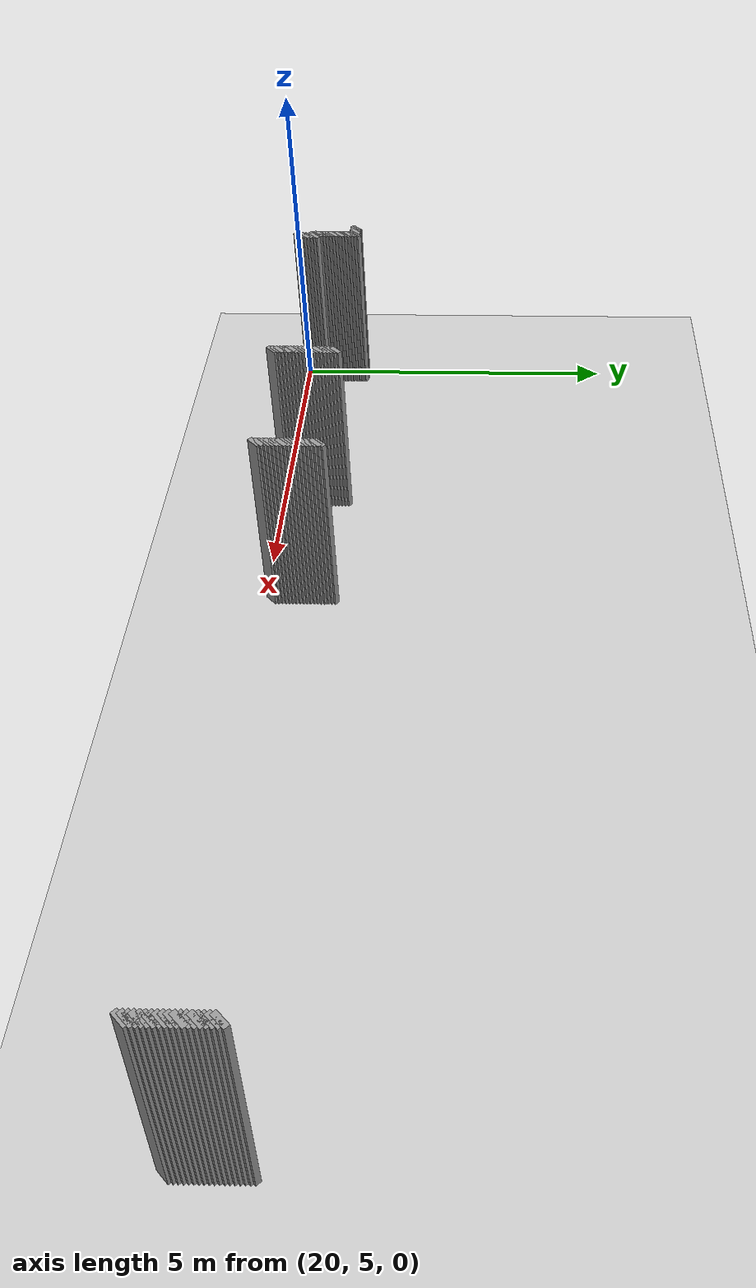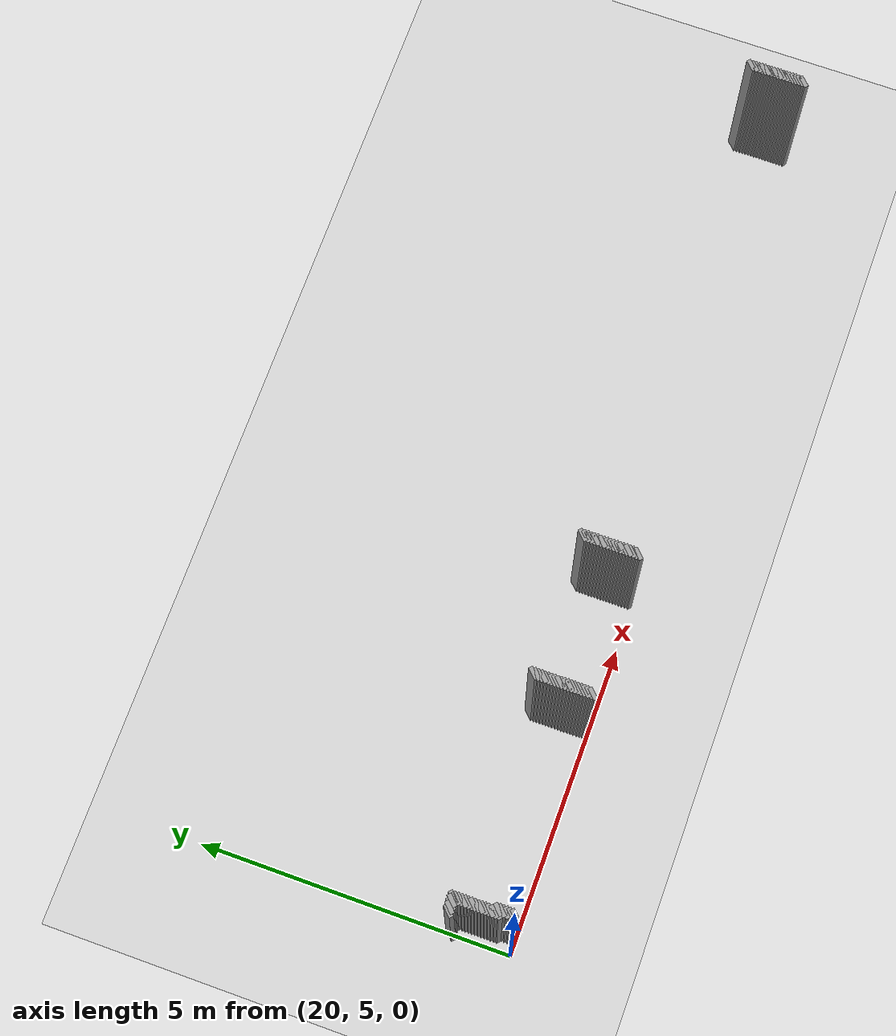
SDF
<sdf version="1.5">
 <world name="default">
  <include><uri>model://ground_plane</uri></include>
  <include><uri>model://sun</uri></include>
  <model name="grey_wall_4727">
   <static>1</static>
   <link name="link">
    <pose>20.0 5.95  1.4 0 0 -0.785398163397</pose>
    <collision name="collision"><geometry><box><size>0.0707106781187 .2  2.8</size></box></geometry></collision>
    <visual name="visual">
     <cast_shadows>0</cast_shadows>
     <geometry><box><size>0.0707106781187 .2  2.8</size></box></geometry>
     <material>
      <script>
       <uri>model://grey_wall/materials/scripts</uri>
       <uri>model://grey_wall/materials/textures</uri>
       <name>vrc/grey_wall</name>
      </script>
     </material>
    </visual>
   </link>
  </model>
  <model name="grey_wall_4728">
   <static>1</static>
   <link name="link">
    <pose>20.05 5.95  1.4 0 0 -0.785398163397</pose>
    <collision name="collision"><geometry><box><size>0.0707106781187 .2  2.8</size></box></geometry></collision>
    <visual name="visual">
     <cast_shadows>0</cast_shadows>
     <geometry><box><size>0.0707106781187 .2  2.8</size></box></geometry>
     <material>
      <script>
       <uri>model://grey_wall/materials/scripts</uri>
       <uri>model://grey_wall/materials/textures</uri>
       <name>vrc/grey_wall</name>
      </script>
     </material>
    </visual>
   </link>
  </model>
  <model name="grey_wall_4729">
   <static>1</static>
   <link name="link">
    <pose>20.1 5.95  1.4 0 0 -0.785398163397</pose>
    <collision name="collision"><geometry><box><size>0.0707106781187 .2  2.8</size></box></geometry></collision>
    <visual name="visual">
     <cast_shadows>0</cast_shadows>
     <geometry><box><size>0.0707106781187 .2  2.8</size></box></geometry>
     <material>
      <script>
       <uri>model://grey_wall/materials/scripts</uri>
       <uri>model://grey_wall/materials/textures</uri>
       <name>vrc/grey_wall</name>
      </script>
     </material>
    </visual>
   </link>
  </model>
  <model name="grey_wall_4730">
   <static>1</static>
   <link name="link">
    <pose>20.15 5.95  1.4 0 0 -0.785398163397</pose>
    <collision name="collision"><geometry><box><size>0.0707106781187 .2  2.8</size></box></geometry></collision>
    <visual name="visual">
     <cast_shadows>0</cast_shadows>
     <geometry><box><size>0.0707106781187 .2  2.8</size></box></geometry>
     <material>
      <script>
       <uri>model://grey_wall/materials/scripts</uri>
       <uri>model://grey_wall/materials/textures</uri>
       <name>vrc/grey_wall</name>
      </script>
     </material>
    </visual>
   </link>
  </model>
  <model name="grey_wall_4731">
   <static>1</static>
   <link name="link">
    <pose>20.2 5.95  1.4 0 0 -0.785398163397</pose>
    <collision name="collision"><geometry><box><size>0.0707106781187 .2  2.8</size></box></geometry></collision>
    <visual name="visual">
     <cast_shadows>0</cast_shadows>
     <geometry><box><size>0.0707106781187 .2  2.8</size></box></geometry>
     <material>
      <script>
       <uri>model://grey_wall/materials/scripts</uri>
       <uri>model://grey_wall/materials/textures</uri>
       <name>vrc/grey_wall</name>
      </script>
     </material>
    </visual>
   </link>
  </model>
  <model name="grey_wall_4732">
   <static>1</static>
   <link name="link">
    <pose>23.6 5.95  1.4 0 0 -0.785398163397</pose>
    <collision name="collision"><geometry><box><size>0.0707106781187 .2  2.8</size></box></geometry></collision>
    <visual name="visual">
     <cast_shadows>0</cast_shadows>
     <geometry><box><size>0.0707106781187 .2  2.8</size></box></geometry>
     <material>
      <script>
       <uri>model://grey_wall/materials/scripts</uri>
       <uri>model://grey_wall/materials/textures</uri>
       <name>vrc/grey_wall</name>
      </script>
     </material>
    </visual>
   </link>
  </model>
  <model name="grey_wall_4733">
   <static>1</static>
   <link name="link">
    <pose>25.8 5.95  1.4 0 0 -0.785398163397</pose>
    <collision name="collision"><geometry><box><size>0.0707106781187 .2  2.8</size></box></geometry></collision>
    <visual name="visual">
     <cast_shadows>0</cast_shadows>
     <geometry><box><size>0.0707106781187 .2  2.8</size></box></geometry>
     <material>
      <script>
       <uri>model://grey_wall/materials/scripts</uri>
       <uri>model://grey_wall/materials/textures</uri>
       <name>vrc/grey_wall</name>
      </script>
     </material>
    </visual>
   </link>
  </model>
  <model name="grey_wall_4734">
   <static>1</static>
   <link name="link">
    <pose>33.95 5.95  1.4 0 0 -0.785398163397</pose>
    <collision name="collision"><geometry><box><size>0.0707106781187 .2  2.8</size></box></geometry></collision>
    <visual name="visual">
     <cast_shadows>0</cast_shadows>
     <geometry><box><size>0.0707106781187 .2  2.8</size></box></geometry>
     <material>
      <script>
       <uri>model://grey_wall/materials/scripts</uri>
       <uri>model://grey_wall/materials/textures</uri>
       <name>vrc/grey_wall</name>
      </script>
     </material>
    </visual>
   </link>
  </model>
  <model name="grey_wall_4735">
   <static>1</static>
   <link name="link">
    <pose>20.2 5.9  1.4 0 0 -0.785398163397</pose>
    <collision name="collision"><geometry><box><size>0.0707106781187 .2  2.8</size></box></geometry></collision>
    <visual name="visual">
     <cast_shadows>0</cast_shadows>
     <geometry><box><size>0.0707106781187 .2  2.8</size></box></geometry>
     <material>
      <script>
       <uri>model://grey_wall/materials/scripts</uri>
       <uri>model://grey_wall/materials/textures</uri>
       <name>vrc/grey_wall</name>
      </script>
     </material>
    </visual>
   </link>
  </model>
  <model name="grey_wall_4736">
   <static>1</static>
   <link name="link">
    <pose>23.6 5.9  1.4 0 0 -0.785398163397</pose>
    <collision name="collision"><geometry><box><size>0.0707106781187 .2  2.8</size></box></geometry></collision>
    <visual name="visual">
     <cast_shadows>0</cast_shadows>
     <geometry><box><size>0.0707106781187 .2  2.8</size></box></geometry>
     <material>
      <script>
       <uri>model://grey_wall/materials/scripts</uri>
       <uri>model://grey_wall/materials/textures</uri>
       <name>vrc/grey_wall</name>
      </script>
     </material>
    </visual>
   </link>
  </model>
  <model name="grey_wall_4737">
   <static>1</static>
   <link name="link">
    <pose>25.8 5.9  1.4 0 0 -0.785398163397</pose>
    <collision name="collision"><geometry><box><size>0.0707106781187 .2  2.8</size></box></geometry></collision>
    <visual name="visual">
     <cast_shadows>0</cast_shadows>
     <geometry><box><size>0.0707106781187 .2  2.8</size></box></geometry>
     <material>
      <script>
       <uri>model://grey_wall/materials/scripts</uri>
       <uri>model://grey_wall/materials/textures</uri>
       <name>vrc/grey_wall</name>
      </script>
     </material>
    </visual>
   </link>
  </model>
  <model name="grey_wall_4738">
   <static>1</static>
   <link name="link">
    <pose>33.95 5.9  1.4 0 0 -0.785398163397</pose>
    <collision name="collision"><geometry><box><size>0.0707106781187 .2  2.8</size></box></geometry></collision>
    <visual name="visual">
     <cast_shadows>0</cast_shadows>
     <geometry><box><size>0.0707106781187 .2  2.8</size></box></geometry>
     <material>
      <script>
       <uri>model://grey_wall/materials/scripts</uri>
       <uri>model://grey_wall/materials/textures</uri>
       <name>vrc/grey_wall</name>
      </script>
     </material>
    </visual>
   </link>
  </model>
  <model name="grey_wall_4739">
   <static>1</static>
   <link name="link">
    <pose>20.2 5.85  1.4 0 0 -0.785398163397</pose>
    <collision name="collision"><geometry><box><size>0.0707106781187 .2  2.8</size></box></geometry></collision>
    <visual name="visual">
     <cast_shadows>0</cast_shadows>
     <geometry><box><size>0.0707106781187 .2  2.8</size></box></geometry>
     <material>
      <script>
       <uri>model://grey_wall/materials/scripts</uri>
       <uri>model://grey_wall/materials/textures</uri>
       <name>vrc/grey_wall</name>
      </script>
     </material>
    </visual>
   </link>
  </model>
  <model name="grey_wall_4740">
   <static>1</static>
   <link name="link">
    <pose>23.6 5.85  1.4 0 0 -0.785398163397</pose>
    <collision name="collision"><geometry><box><size>0.0707106781187 .2  2.8</size></box></geometry></collision>
    <visual name="visual">
     <cast_shadows>0</cast_shadows>
     <geometry><box><size>0.0707106781187 .2  2.8</size></box></geometry>
     <material>
      <script>
       <uri>model://grey_wall/materials/scripts</uri>
       <uri>model://grey_wall/materials/textures</uri>
       <name>vrc/grey_wall</name>
      </script>
     </material>
    </visual>
   </link>
  </model>
  <model name="grey_wall_4741">
   <static>1</static>
   <link name="link">
    <pose>25.8 5.85  1.4 0 0 -0.785398163397</pose>
    <collision name="collision"><geometry><box><size>0.0707106781187 .2  2.8</size></box></geometry></collision>
    <visual name="visual">
     <cast_shadows>0</cast_shadows>
     <geometry><box><size>0.0707106781187 .2  2.8</size></box></geometry>
     <material>
      <script>
       <uri>model://grey_wall/materials/scripts</uri>
       <uri>model://grey_wall/materials/textures</uri>
       <name>vrc/grey_wall</name>
      </script>
     </material>
    </visual>
   </link>
  </model>
  <model name="grey_wall_4742">
   <static>1</static>
   <link name="link">
    <pose>33.95 5.85  1.4 0 0 -0.785398163397</pose>
    <collision name="collision"><geometry><box><size>0.0707106781187 .2  2.8</size></box></geometry></collision>
    <visual name="visual">
     <cast_shadows>0</cast_shadows>
     <geometry><box><size>0.0707106781187 .2  2.8</size></box></geometry>
     <material>
      <script>
       <uri>model://grey_wall/materials/scripts</uri>
       <uri>model://grey_wall/materials/textures</uri>
       <name>vrc/grey_wall</name>
      </script>
     </material>
    </visual>
   </link>
  </model>
  <model name="grey_wall_4743">
   <static>1</static>
   <link name="link">
    <pose>20.2 5.8  1.4 0 0 -0.785398163397</pose>
    <collision name="collision"><geometry><box><size>0.0707106781187 .2  2.8</size></box></geometry></collision>
    <visual name="visual">
     <cast_shadows>0</cast_shadows>
     <geometry><box><size>0.0707106781187 .2  2.8</size></box></geometry>
     <material>
      <script>
       <uri>model://grey_wall/materials/scripts</uri>
       <uri>model://grey_wall/materials/textures</uri>
       <name>vrc/grey_wall</name>
      </script>
     </material>
    </visual>
   </link>
  </model>
  <model name="grey_wall_4744">
   <static>1</static>
   <link name="link">
    <pose>23.6 5.8  1.4 0 0 -0.785398163397</pose>
    <collision name="collision"><geometry><box><size>0.0707106781187 .2  2.8</size></box></geometry></collision>
    <visual name="visual">
     <cast_shadows>0</cast_shadows>
     <geometry><box><size>0.0707106781187 .2  2.8</size></box></geometry>
     <material>
      <script>
       <uri>model://grey_wall/materials/scripts</uri>
       <uri>model://grey_wall/materials/textures</uri>
       <name>vrc/grey_wall</name>
      </script>
     </material>
    </visual>
   </link>
  </model>
  <model name="grey_wall_4745">
   <static>1</static>
   <link name="link">
    <pose>25.8 5.8  1.4 0 0 -0.785398163397</pose>
    <collision name="collision"><geometry><box><size>0.0707106781187 .2  2.8</size></box></geometry></collision>
    <visual name="visual">
     <cast_shadows>0</cast_shadows>
     <geometry><box><size>0.0707106781187 .2  2.8</size></box></geometry>
     <material>
      <script>
       <uri>model://grey_wall/materials/scripts</uri>
       <uri>model://grey_wall/materials/textures</uri>
       <name>vrc/grey_wall</name>
      </script>
     </material>
    </visual>
   </link>
  </model>
  <model name="grey_wall_4746">
   <static>1</static>
   <link name="link">
    <pose>33.95 5.8  1.4 0 0 -0.785398163397</pose>
    <collision name="collision"><geometry><box><size>0.0707106781187 .2  2.8</size></box></geometry></collision>
    <visual name="visual">
     <cast_shadows>0</cast_shadows>
     <geometry><box><size>0.0707106781187 .2  2.8</size></box></geometry>
     <material>
      <script>
       <uri>model://grey_wall/materials/scripts</uri>
       <uri>model://grey_wall/materials/textures</uri>
       <name>vrc/grey_wall</name>
      </script>
     </material>
    </visual>
   </link>
  </model>
  <model name="grey_wall_4747">
   <static>1</static>
   <link name="link">
    <pose>20.2 5.75  1.4 0 0 -0.785398163397</pose>
    <collision name="collision"><geometry><box><size>0.0707106781187 .2  2.8</size></box></geometry></collision>
    <visual name="visual">
     <cast_shadows>0</cast_shadows>
     <geometry><box><size>0.0707106781187 .2  2.8</size></box></geometry>
     <material>
      <script>
       <uri>model://grey_wall/materials/scripts</uri>
       <uri>model://grey_wall/materials/textures</uri>
       <name>vrc/grey_wall</name>
      </script>
     </material>
    </visual>
   </link>
  </model>
  <model name="grey_wall_4748">
   <static>1</static>
   <link name="link">
    <pose>23.6 5.75  1.4 0 0 -0.785398163397</pose>
    <collision name="collision"><geometry><box><size>0.0707106781187 .2  2.8</size></box></geometry></collision>
    <visual name="visual">
     <cast_shadows>0</cast_shadows>
     <geometry><box><size>0.0707106781187 .2  2.8</size></box></geometry>
     <material>
      <script>
       <uri>model://grey_wall/materials/scripts</uri>
       <uri>model://grey_wall/materials/textures</uri>
       <name>vrc/grey_wall</name>
      </script>
     </material>
    </visual>
   </link>
  </model>
  <model name="grey_wall_4749">
   <static>1</static>
   <link name="link">
    <pose>25.8 5.75  1.4 0 0 -0.785398163397</pose>
    <collision name="collision"><geometry><box><size>0.0707106781187 .2  2.8</size></box></geometry></collision>
    <visual name="visual">
     <cast_shadows>0</cast_shadows>
     <geometry><box><size>0.0707106781187 .2  2.8</size></box></geometry>
     <material>
      <script>
       <uri>model://grey_wall/materials/scripts</uri>
       <uri>model://grey_wall/materials/textures</uri>
       <name>vrc/grey_wall</name>
      </script>
     </material>
    </visual>
   </link>
  </model>
  <model name="grey_wall_4750">
   <static>1</static>
   <link name="link">
    <pose>33.95 5.75  1.4 0 0 -0.785398163397</pose>
    <collision name="collision"><geometry><box><size>0.0707106781187 .2  2.8</size></box></geometry></collision>
    <visual name="visual">
     <cast_shadows>0</cast_shadows>
     <geometry><box><size>0.0707106781187 .2  2.8</size></box></geometry>
     <material>
      <script>
       <uri>model://grey_wall/materials/scripts</uri>
       <uri>model://grey_wall/materials/textures</uri>
       <name>vrc/grey_wall</name>
      </script>
     </material>
    </visual>
   </link>
  </model>
  <model name="grey_wall_4751">
   <static>1</static>
   <link name="link">
    <pose>20.2 5.7  1.4 0 0 -0.785398163397</pose>
    <collision name="collision"><geometry><box><size>0.0707106781187 .2  2.8</size></box></geometry></collision>
    <visual name="visual">
     <cast_shadows>0</cast_shadows>
     <geometry><box><size>0.0707106781187 .2  2.8</size></box></geometry>
     <material>
      <script>
       <uri>model://grey_wall/materials/scripts</uri>
       <uri>model://grey_wall/materials/textures</uri>
       <name>vrc/grey_wall</name>
      </script>
     </material>
    </visual>
   </link>
  </model>
  <model name="grey_wall_4752">
   <static>1</static>
   <link name="link">
    <pose>23.6 5.7  1.4 0 0 -0.785398163397</pose>
    <collision name="collision"><geometry><box><size>0.0707106781187 .2  2.8</size></box></geometry></collision>
    <visual name="visual">
     <cast_shadows>0</cast_shadows>
     <geometry><box><size>0.0707106781187 .2  2.8</size></box></geometry>
     <material>
      <script>
       <uri>model://grey_wall/materials/scripts</uri>
       <uri>model://grey_wall/materials/textures</uri>
       <name>vrc/grey_wall</name>
      </script>
     </material>
    </visual>
   </link>
  </model>
  <model name="grey_wall_4753">
   <static>1</static>
   <link name="link">
    <pose>25.8 5.7  1.4 0 0 -0.785398163397</pose>
    <collision name="collision"><geometry><box><size>0.0707106781187 .2  2.8</size></box></geometry></collision>
    <visual name="visual">
     <cast_shadows>0</cast_shadows>
     <geometry><box><size>0.0707106781187 .2  2.8</size></box></geometry>
     <material>
      <script>
       <uri>model://grey_wall/materials/scripts</uri>
       <uri>model://grey_wall/materials/textures</uri>
       <name>vrc/grey_wall</name>
      </script>
     </material>
    </visual>
   </link>
  </model>
  <model name="grey_wall_4754">
   <static>1</static>
   <link name="link">
    <pose>33.95 5.7  1.4 0 0 -0.785398163397</pose>
    <collision name="collision"><geometry><box><size>0.0707106781187 .2  2.8</size></box></geometry></collision>
    <visual name="visual">
     <cast_shadows>0</cast_shadows>
     <geometry><box><size>0.0707106781187 .2  2.8</size></box></geometry>
     <material>
      <script>
       <uri>model://grey_wall/materials/scripts</uri>
       <uri>model://grey_wall/materials/textures</uri>
       <name>vrc/grey_wall</name>
      </script>
     </material>
    </visual>
   </link>
  </model>
  <model name="grey_wall_4755">
   <static>1</static>
   <link name="link">
    <pose>20.2 5.65  1.4 0 0 -0.785398163397</pose>
    <collision name="collision"><geometry><box><size>0.0707106781187 .2  2.8</size></box></geometry></collision>
    <visual name="visual">
     <cast_shadows>0</cast_shadows>
     <geometry><box><size>0.0707106781187 .2  2.8</size></box></geometry>
     <material>
      <script>
       <uri>model://grey_wall/materials/scripts</uri>
       <uri>model://grey_wall/materials/textures</uri>
       <name>vrc/grey_wall</name>
      </script>
     </material>
    </visual>
   </link>
  </model>
  <model name="grey_wall_4756">
   <static>1</static>
   <link name="link">
    <pose>23.6 5.65  1.4 0 0 -0.785398163397</pose>
    <collision name="collision"><geometry><box><size>0.0707106781187 .2  2.8</size></box></geometry></collision>
    <visual name="visual">
     <cast_shadows>0</cast_shadows>
     <geometry><box><size>0.0707106781187 .2  2.8</size></box></geometry>
     <material>
      <script>
       <uri>model://grey_wall/materials/scripts</uri>
       <uri>model://grey_wall/materials/textures</uri>
       <name>vrc/grey_wall</name>
      </script>
     </material>
    </visual>
   </link>
  </model>
  <model name="grey_wall_4757">
   <static>1</static>
   <link name="link">
    <pose>25.8 5.65  1.4 0 0 -0.785398163397</pose>
    <collision name="collision"><geometry><box><size>0.0707106781187 .2  2.8</size></box></geometry></collision>
    <visual name="visual">
     <cast_shadows>0</cast_shadows>
     <geometry><box><size>0.0707106781187 .2  2.8</size></box></geometry>
     <material>
      <script>
       <uri>model://grey_wall/materials/scripts</uri>
       <uri>model://grey_wall/materials/textures</uri>
       <name>vrc/grey_wall</name>
      </script>
     </material>
    </visual>
   </link>
  </model>
  <model name="grey_wall_4758">
   <static>1</static>
   <link name="link">
    <pose>33.95 5.65  1.4 0 0 -0.785398163397</pose>
    <collision name="collision"><geometry><box><size>0.0707106781187 .2  2.8</size></box></geometry></collision>
    <visual name="visual">
     <cast_shadows>0</cast_shadows>
     <geometry><box><size>0.0707106781187 .2  2.8</size></box></geometry>
     <material>
      <script>
       <uri>model://grey_wall/materials/scripts</uri>
       <uri>model://grey_wall/materials/textures</uri>
       <name>vrc/grey_wall</name>
      </script>
     </material>
    </visual>
   </link>
  </model>
  <model name="grey_wall_4759">
   <static>1</static>
   <link name="link">
    <pose>20.2 5.6  1.4 0 0 -0.785398163397</pose>
    <collision name="collision"><geometry><box><size>0.0707106781187 .2  2.8</size></box></geometry></collision>
    <visual name="visual">
     <cast_shadows>0</cast_shadows>
     <geometry><box><size>0.0707106781187 .2  2.8</size></box></geometry>
     <material>
      <script>
       <uri>model://grey_wall/materials/scripts</uri>
       <uri>model://grey_wall/materials/textures</uri>
       <name>vrc/grey_wall</name>
      </script>
     </material>
    </visual>
   </link>
  </model>
  <model name="grey_wall_4760">
   <static>1</static>
   <link name="link">
    <pose>23.6 5.6  1.4 0 0 -0.785398163397</pose>
    <collision name="collision"><geometry><box><size>0.0707106781187 .2  2.8</size></box></geometry></collision>
    <visual name="visual">
     <cast_shadows>0</cast_shadows>
     <geometry><box><size>0.0707106781187 .2  2.8</size></box></geometry>
     <material>
      <script>
       <uri>model://grey_wall/materials/scripts</uri>
       <uri>model://grey_wall/materials/textures</uri>
       <name>vrc/grey_wall</name>
      </script>
     </material>
    </visual>
   </link>
  </model>
  <model name="grey_wall_4761">
   <static>1</static>
   <link name="link">
    <pose>25.8 5.6  1.4 0 0 -0.785398163397</pose>
    <collision name="collision"><geometry><box><size>0.0707106781187 .2  2.8</size></box></geometry></collision>
    <visual name="visual">
     <cast_shadows>0</cast_shadows>
     <geometry><box><size>0.0707106781187 .2  2.8</size></box></geometry>
     <material>
      <script>
       <uri>model://grey_wall/materials/scripts</uri>
       <uri>model://grey_wall/materials/textures</uri>
       <name>vrc/grey_wall</name>
      </script>
     </material>
    </visual>
   </link>
  </model>
  <model name="grey_wall_4762">
   <static>1</static>
   <link name="link">
    <pose>33.95 5.6  1.4 0 0 -0.785398163397</pose>
    <collision name="collision"><geometry><box><size>0.0707106781187 .2  2.8</size></box></geometry></collision>
    <visual name="visual">
     <cast_shadows>0</cast_shadows>
     <geometry><box><size>0.0707106781187 .2  2.8</size></box></geometry>
     <material>
      <script>
       <uri>model://grey_wall/materials/scripts</uri>
       <uri>model://grey_wall/materials/textures</uri>
       <name>vrc/grey_wall</name>
      </script>
     </material>
    </visual>
   </link>
  </model>
  <model name="grey_wall_4763">
   <static>1</static>
   <link name="link">
    <pose>20.2 5.55  1.4 0 0 -0.785398163397</pose>
    <collision name="collision"><geometry><box><size>0.0707106781187 .2  2.8</size></box></geometry></collision>
    <visual name="visual">
     <cast_shadows>0</cast_shadows>
     <geometry><box><size>0.0707106781187 .2  2.8</size></box></geometry>
     <material>
      <script>
       <uri>model://grey_wall/materials/scripts</uri>
       <uri>model://grey_wall/materials/textures</uri>
       <name>vrc/grey_wall</name>
      </script>
     </material>
    </visual>
   </link>
  </model>
  <model name="grey_wall_4764">
   <static>1</static>
   <link name="link">
    <pose>23.6 5.55  1.4 0 0 -0.785398163397</pose>
    <collision name="collision"><geometry><box><size>0.0707106781187 .2  2.8</size></box></geometry></collision>
    <visual name="visual">
     <cast_shadows>0</cast_shadows>
     <geometry><box><size>0.0707106781187 .2  2.8</size></box></geometry>
     <material>
      <script>
       <uri>model://grey_wall/materials/scripts</uri>
       <uri>model://grey_wall/materials/textures</uri>
       <name>vrc/grey_wall</name>
      </script>
     </material>
    </visual>
   </link>
  </model>
  <model name="grey_wall_4765">
   <static>1</static>
   <link name="link">
    <pose>25.8 5.55  1.4 0 0 -0.785398163397</pose>
    <collision name="collision"><geometry><box><size>0.0707106781187 .2  2.8</size></box></geometry></collision>
    <visual name="visual">
     <cast_shadows>0</cast_shadows>
     <geometry><box><size>0.0707106781187 .2  2.8</size></box></geometry>
     <material>
      <script>
       <uri>model://grey_wall/materials/scripts</uri>
       <uri>model://grey_wall/materials/textures</uri>
       <name>vrc/grey_wall</name>
      </script>
     </material>
    </visual>
   </link>
  </model>
  <model name="grey_wall_4766">
   <static>1</static>
   <link name="link">
    <pose>33.95 5.55  1.4 0 0 -0.785398163397</pose>
    <collision name="collision"><geometry><box><size>0.0707106781187 .2  2.8</size></box></geometry></collision>
    <visual name="visual">
     <cast_shadows>0</cast_shadows>
     <geometry><box><size>0.0707106781187 .2  2.8</size></box></geometry>
     <material>
      <script>
       <uri>model://grey_wall/materials/scripts</uri>
       <uri>model://grey_wall/materials/textures</uri>
       <name>vrc/grey_wall</name>
      </script>
     </material>
    </visual>
   </link>
  </model>
  <model name="grey_wall_4767">
   <static>1</static>
   <link name="link">
    <pose>20.2 5.5  1.4 0 0 -0.785398163397</pose>
    <collision name="collision"><geometry><box><size>0.0707106781187 .2  2.8</size></box></geometry></collision>
    <visual name="visual">
     <cast_shadows>0</cast_shadows>
     <geometry><box><size>0.0707106781187 .2  2.8</size></box></geometry>
     <material>
      <script>
       <uri>model://grey_wall/materials/scripts</uri>
       <uri>model://grey_wall/materials/textures</uri>
       <name>vrc/grey_wall</name>
      </script>
     </material>
    </visual>
   </link>
  </model>
  <model name="grey_wall_4768">
   <static>1</static>
   <link name="link">
    <pose>23.6 5.5  1.4 0 0 -0.785398163397</pose>
    <collision name="collision"><geometry><box><size>0.0707106781187 .2  2.8</size></box></geometry></collision>
    <visual name="visual">
     <cast_shadows>0</cast_shadows>
     <geometry><box><size>0.0707106781187 .2  2.8</size></box></geometry>
     <material>
      <script>
       <uri>model://grey_wall/materials/scripts</uri>
       <uri>model://grey_wall/materials/textures</uri>
       <name>vrc/grey_wall</name>
      </script>
     </material>
    </visual>
   </link>
  </model>
  <model name="grey_wall_4769">
   <static>1</static>
   <link name="link">
    <pose>25.8 5.5  1.4 0 0 -0.785398163397</pose>
    <collision name="collision"><geometry><box><size>0.0707106781187 .2  2.8</size></box></geometry></collision>
    <visual name="visual">
     <cast_shadows>0</cast_shadows>
     <geometry><box><size>0.0707106781187 .2  2.8</size></box></geometry>
     <material>
      <script>
       <uri>model://grey_wall/materials/scripts</uri>
       <uri>model://grey_wall/materials/textures</uri>
       <name>vrc/grey_wall</name>
      </script>
     </material>
    </visual>
   </link>
  </model>
  <model name="grey_wall_4770">
   <static>1</static>
   <link name="link">
    <pose>33.95 5.5  1.4 0 0 -0.785398163397</pose>
    <collision name="collision"><geometry><box><size>0.0707106781187 .2  2.8</size></box></geometry></collision>
    <visual name="visual">
     <cast_shadows>0</cast_shadows>
     <geometry><box><size>0.0707106781187 .2  2.8</size></box></geometry>
     <material>
      <script>
       <uri>model://grey_wall/materials/scripts</uri>
       <uri>model://grey_wall/materials/textures</uri>
       <name>vrc/grey_wall</name>
      </script>
     </material>
    </visual>
   </link>
  </model>
  <model name="grey_wall_4771">
   <static>1</static>
   <link name="link">
    <pose>20.2 5.45  1.4 0 0 -0.785398163397</pose>
    <collision name="collision"><geometry><box><size>0.0707106781187 .2  2.8</size></box></geometry></collision>
    <visual name="visual">
     <cast_shadows>0</cast_shadows>
     <geometry><box><size>0.0707106781187 .2  2.8</size></box></geometry>
     <material>
      <script>
       <uri>model://grey_wall/materials/scripts</uri>
       <uri>model://grey_wall/materials/textures</uri>
       <name>vrc/grey_wall</name>
      </script>
     </material>
    </visual>
   </link>
  </model>
  <model name="grey_wall_4772">
   <static>1</static>
   <link name="link">
    <pose>23.6 5.45  1.4 0 0 -0.785398163397</pose>
    <collision name="collision"><geometry><box><size>0.0707106781187 .2  2.8</size></box></geometry></collision>
    <visual name="visual">
     <cast_shadows>0</cast_shadows>
     <geometry><box><size>0.0707106781187 .2  2.8</size></box></geometry>
     <material>
      <script>
       <uri>model://grey_wall/materials/scripts</uri>
       <uri>model://grey_wall/materials/textures</uri>
       <name>vrc/grey_wall</name>
      </script>
     </material>
    </visual>
   </link>
  </model>
  <model name="grey_wall_4773">
   <static>1</static>
   <link name="link">
    <pose>25.8 5.45  1.4 0 0 -0.785398163397</pose>
    <collision name="collision"><geometry><box><size>0.0707106781187 .2  2.8</size></box></geometry></collision>
    <visual name="visual">
     <cast_shadows>0</cast_shadows>
     <geometry><box><size>0.0707106781187 .2  2.8</size></box></geometry>
     <material>
      <script>
       <uri>model://grey_wall/materials/scripts</uri>
       <uri>model://grey_wall/materials/textures</uri>
       <name>vrc/grey_wall</name>
      </script>
     </material>
    </visual>
   </link>
  </model>
  <model name="grey_wall_4774">
   <static>1</static>
   <link name="link">
    <pose>33.95 5.45  1.4 0 0 -0.785398163397</pose>
    <collision name="collision"><geometry><box><size>0.0707106781187 .2  2.8</size></box></geometry></collision>
    <visual name="visual">
     <cast_shadows>0</cast_shadows>
     <geometry><box><size>0.0707106781187 .2  2.8</size></box></geometry>
     <material>
      <script>
       <uri>model://grey_wall/materials/scripts</uri>
       <uri>model://grey_wall/materials/textures</uri>
       <name>vrc/grey_wall</name>
      </script>
     </material>
    </visual>
   </link>
  </model>
  <model name="grey_wall_4775">
   <static>1</static>
   <link name="link">
    <pose>20.2 5.4  1.4 0 0 -0.785398163397</pose>
    <collision name="collision"><geometry><box><size>0.0707106781187 .2  2.8</size></box></geometry></collision>
    <visual name="visual">
     <cast_shadows>0</cast_shadows>
     <geometry><box><size>0.0707106781187 .2  2.8</size></box></geometry>
     <material>
      <script>
       <uri>model://grey_wall/materials/scripts</uri>
       <uri>model://grey_wall/materials/textures</uri>
       <name>vrc/grey_wall</name>
      </script>
     </material>
    </visual>
   </link>
  </model>
  <model name="grey_wall_4776">
   <static>1</static>
   <link name="link">
    <pose>23.6 5.4  1.4 0 0 -0.785398163397</pose>
    <collision name="collision"><geometry><box><size>0.0707106781187 .2  2.8</size></box></geometry></collision>
    <visual name="visual">
     <cast_shadows>0</cast_shadows>
     <geometry><box><size>0.0707106781187 .2  2.8</size></box></geometry>
     <material>
      <script>
       <uri>model://grey_wall/materials/scripts</uri>
       <uri>model://grey_wall/materials/textures</uri>
       <name>vrc/grey_wall</name>
      </script>
     </material>
    </visual>
   </link>
  </model>
  <model name="grey_wall_4777">
   <static>1</static>
   <link name="link">
    <pose>25.8 5.4  1.4 0 0 -0.785398163397</pose>
    <collision name="collision"><geometry><box><size>0.0707106781187 .2  2.8</size></box></geometry></collision>
    <visual name="visual">
     <cast_shadows>0</cast_shadows>
     <geometry><box><size>0.0707106781187 .2  2.8</size></box></geometry>
     <material>
      <script>
       <uri>model://grey_wall/materials/scripts</uri>
       <uri>model://grey_wall/materials/textures</uri>
       <name>vrc/grey_wall</name>
      </script>
     </material>
    </visual>
   </link>
  </model>
  <model name="grey_wall_4778">
   <static>1</static>
   <link name="link">
    <pose>33.95 5.4  1.4 0 0 -0.785398163397</pose>
    <collision name="collision"><geometry><box><size>0.0707106781187 .2  2.8</size></box></geometry></collision>
    <visual name="visual">
     <cast_shadows>0</cast_shadows>
     <geometry><box><size>0.0707106781187 .2  2.8</size></box></geometry>
     <material>
      <script>
       <uri>model://grey_wall/materials/scripts</uri>
       <uri>model://grey_wall/materials/textures</uri>
       <name>vrc/grey_wall</name>
      </script>
     </material>
    </visual>
   </link>
  </model>
  <model name="grey_wall_4779">
   <static>1</static>
   <link name="link">
    <pose>20.2 5.35  1.4 0 0 -0.785398163397</pose>
    <collision name="collision"><geometry><box><size>0.0707106781187 .2  2.8</size></box></geometry></collision>
    <visual name="visual">
     <cast_shadows>0</cast_shadows>
     <geometry><box><size>0.0707106781187 .2  2.8</size></box></geometry>
     <material>
      <script>
       <uri>model://grey_wall/materials/scripts</uri>
       <uri>model://grey_wall/materials/textures</uri>
       <name>vrc/grey_wall</name>
      </script>
     </material>
    </visual>
   </link>
  </model>
  <model name="grey_wall_4780">
   <static>1</static>
   <link name="link">
    <pose>23.6 5.35  1.4 0 0 -0.785398163397</pose>
    <collision name="collision"><geometry><box><size>0.0707106781187 .2  2.8</size></box></geometry></collision>
    <visual name="visual">
     <cast_shadows>0</cast_shadows>
     <geometry><box><size>0.0707106781187 .2  2.8</size></box></geometry>
     <material>
      <script>
       <uri>model://grey_wall/materials/scripts</uri>
       <uri>model://grey_wall/materials/textures</uri>
       <name>vrc/grey_wall</name>
      </script>
     </material>
    </visual>
   </link>
  </model>
  <model name="grey_wall_4781">
   <static>1</static>
   <link name="link">
    <pose>25.8 5.35  1.4 0 0 -0.785398163397</pose>
    <collision name="collision"><geometry><box><size>0.0707106781187 .2  2.8</size></box></geometry></collision>
    <visual name="visual">
     <cast_shadows>0</cast_shadows>
     <geometry><box><size>0.0707106781187 .2  2.8</size></box></geometry>
     <material>
      <script>
       <uri>model://grey_wall/materials/scripts</uri>
       <uri>model://grey_wall/materials/textures</uri>
       <name>vrc/grey_wall</name>
      </script>
     </material>
    </visual>
   </link>
  </model>
  <model name="grey_wall_4782">
   <static>1</static>
   <link name="link">
    <pose>33.95 5.35  1.4 0 0 -0.785398163397</pose>
    <collision name="collision"><geometry><box><size>0.0707106781187 .2  2.8</size></box></geometry></collision>
    <visual name="visual">
     <cast_shadows>0</cast_shadows>
     <geometry><box><size>0.0707106781187 .2  2.8</size></box></geometry>
     <material>
      <script>
       <uri>model://grey_wall/materials/scripts</uri>
       <uri>model://grey_wall/materials/textures</uri>
       <name>vrc/grey_wall</name>
      </script>
     </material>
    </visual>
   </link>
  </model>
  <model name="grey_wall_4783">
   <static>1</static>
   <link name="link">
    <pose>20.2 5.3  1.4 0 0 -0.785398163397</pose>
    <collision name="collision"><geometry><box><size>0.0707106781187 .2  2.8</size></box></geometry></collision>
    <visual name="visual">
     <cast_shadows>0</cast_shadows>
     <geometry><box><size>0.0707106781187 .2  2.8</size></box></geometry>
     <material>
      <script>
       <uri>model://grey_wall/materials/scripts</uri>
       <uri>model://grey_wall/materials/textures</uri>
       <name>vrc/grey_wall</name>
      </script>
     </material>
    </visual>
   </link>
  </model>
  <model name="grey_wall_4784">
   <static>1</static>
   <link name="link">
    <pose>20.25 5.3  1.4 0 0 -0.785398163397</pose>
    <collision name="collision"><geometry><box><size>0.0707106781187 .2  2.8</size></box></geometry></collision>
    <visual name="visual">
     <cast_shadows>0</cast_shadows>
     <geometry><box><size>0.0707106781187 .2  2.8</size></box></geometry>
     <material>
      <script>
       <uri>model://grey_wall/materials/scripts</uri>
       <uri>model://grey_wall/materials/textures</uri>
       <name>vrc/grey_wall</name>
      </script>
     </material>
    </visual>
   </link>
  </model>
  <model name="grey_wall_4785">
   <static>1</static>
   <link name="link">
    <pose>23.6 5.3  1.4 0 0 -0.785398163397</pose>
    <collision name="collision"><geometry><box><size>0.0707106781187 .2  2.8</size></box></geometry></collision>
    <visual name="visual">
     <cast_shadows>0</cast_shadows>
     <geometry><box><size>0.0707106781187 .2  2.8</size></box></geometry>
     <material>
      <script>
       <uri>model://grey_wall/materials/scripts</uri>
       <uri>model://grey_wall/materials/textures</uri>
       <name>vrc/grey_wall</name>
      </script>
     </material>
    </visual>
   </link>
  </model>
  <model name="grey_wall_4786">
   <static>1</static>
   <link name="link">
    <pose>25.8 5.3  1.4 0 0 -0.785398163397</pose>
    <collision name="collision"><geometry><box><size>0.0707106781187 .2  2.8</size></box></geometry></collision>
    <visual name="visual">
     <cast_shadows>0</cast_shadows>
     <geometry><box><size>0.0707106781187 .2  2.8</size></box></geometry>
     <material>
      <script>
       <uri>model://grey_wall/materials/scripts</uri>
       <uri>model://grey_wall/materials/textures</uri>
       <name>vrc/grey_wall</name>
      </script>
     </material>
    </visual>
   </link>
  </model>
  <model name="grey_wall_4787">
   <static>1</static>
   <link name="link">
    <pose>33.95 5.3  1.4 0 0 -0.785398163397</pose>
    <collision name="collision"><geometry><box><size>0.0707106781187 .2  2.8</size></box></geometry></collision>
    <visual name="visual">
     <cast_shadows>0</cast_shadows>
     <geometry><box><size>0.0707106781187 .2  2.8</size></box></geometry>
     <material>
      <script>
       <uri>model://grey_wall/materials/scripts</uri>
       <uri>model://grey_wall/materials/textures</uri>
       <name>vrc/grey_wall</name>
      </script>
     </material>
    </visual>
   </link>
  </model>
  <model name="grey_wall_4788">
   <static>1</static>
   <link name="link">
    <pose>20.25 5.25  1.4 0 0 -0.785398163397</pose>
    <collision name="collision"><geometry><box><size>0.0707106781187 .2  2.8</size></box></geometry></collision>
    <visual name="visual">
     <cast_shadows>0</cast_shadows>
     <geometry><box><size>0.0707106781187 .2  2.8</size></box></geometry>
     <material>
      <script>
       <uri>model://grey_wall/materials/scripts</uri>
       <uri>model://grey_wall/materials/textures</uri>
       <name>vrc/grey_wall</name>
      </script>
     </material>
    </visual>
   </link>
  </model>
  <model name="grey_wall_4789">
   <static>1</static>
   <link name="link">
    <pose>23.6 5.25  1.4 0 0 -0.785398163397</pose>
    <collision name="collision"><geometry><box><size>0.0707106781187 .2  2.8</size></box></geometry></collision>
    <visual name="visual">
     <cast_shadows>0</cast_shadows>
     <geometry><box><size>0.0707106781187 .2  2.8</size></box></geometry>
     <material>
      <script>
       <uri>model://grey_wall/materials/scripts</uri>
       <uri>model://grey_wall/materials/textures</uri>
       <name>vrc/grey_wall</name>
      </script>
     </material>
    </visual>
   </link>
  </model>
  <model name="grey_wall_4790">
   <static>1</static>
   <link name="link">
    <pose>25.8 5.25  1.4 0 0 -0.785398163397</pose>
    <collision name="collision"><geometry><box><size>0.0707106781187 .2  2.8</size></box></geometry></collision>
    <visual name="visual">
     <cast_shadows>0</cast_shadows>
     <geometry><box><size>0.0707106781187 .2  2.8</size></box></geometry>
     <material>
      <script>
       <uri>model://grey_wall/materials/scripts</uri>
       <uri>model://grey_wall/materials/textures</uri>
       <name>vrc/grey_wall</name>
      </script>
     </material>
    </visual>
   </link>
  </model>
  <model name="grey_wall_4791">
   <static>1</static>
   <link name="link">
    <pose>33.95 5.25  1.4 0 0 -0.785398163397</pose>
    <collision name="collision"><geometry><box><size>0.0707106781187 .2  2.8</size></box></geometry></collision>
    <visual name="visual">
     <cast_shadows>0</cast_shadows>
     <geometry><box><size>0.0707106781187 .2  2.8</size></box></geometry>
     <material>
      <script>
       <uri>model://grey_wall/materials/scripts</uri>
       <uri>model://grey_wall/materials/textures</uri>
       <name>vrc/grey_wall</name>
      </script>
     </material>
    </visual>
   </link>
  </model>
  <model name="grey_wall_4792">
   <static>1</static>
   <link name="link">
    <pose>20.25 5.2  1.4 0 0 -0.785398163397</pose>
    <collision name="collision"><geometry><box><size>0.0707106781187 .2  2.8</size></box></geometry></collision>
    <visual name="visual">
     <cast_shadows>0</cast_shadows>
     <geometry><box><size>0.0707106781187 .2  2.8</size></box></geometry>
     <material>
      <script>
       <uri>model://grey_wall/materials/scripts</uri>
       <uri>model://grey_wall/materials/textures</uri>
       <name>vrc/grey_wall</name>
      </script>
     </material>
    </visual>
   </link>
  </model>
  <model name="grey_wall_4793">
   <static>1</static>
   <link name="link">
    <pose>23.6 5.2  1.4 0 0 -0.785398163397</pose>
    <collision name="collision"><geometry><box><size>0.0707106781187 .2  2.8</size></box></geometry></collision>
    <visual name="visual">
     <cast_shadows>0</cast_shadows>
     <geometry><box><size>0.0707106781187 .2  2.8</size></box></geometry>
     <material>
      <script>
       <uri>model://grey_wall/materials/scripts</uri>
       <uri>model://grey_wall/materials/textures</uri>
       <name>vrc/grey_wall</name>
      </script>
     </material>
    </visual>
   </link>
  </model>
  <model name="grey_wall_4794">
   <static>1</static>
   <link name="link">
    <pose>25.8 5.2  1.4 0 0 -0.785398163397</pose>
    <collision name="collision"><geometry><box><size>0.0707106781187 .2  2.8</size></box></geometry></collision>
    <visual name="visual">
     <cast_shadows>0</cast_shadows>
     <geometry><box><size>0.0707106781187 .2  2.8</size></box></geometry>
     <material>
      <script>
       <uri>model://grey_wall/materials/scripts</uri>
       <uri>model://grey_wall/materials/textures</uri>
       <name>vrc/grey_wall</name>
      </script>
     </material>
    </visual>
   </link>
  </model>
  <model name="grey_wall_4795">
   <static>1</static>
   <link name="link">
    <pose>33.95 5.2  1.4 0 0 -0.785398163397</pose>
    <collision name="collision"><geometry><box><size>0.0707106781187 .2  2.8</size></box></geometry></collision>
    <visual name="visual">
     <cast_shadows>0</cast_shadows>
     <geometry><box><size>0.0707106781187 .2  2.8</size></box></geometry>
     <material>
      <script>
       <uri>model://grey_wall/materials/scripts</uri>
       <uri>model://grey_wall/materials/textures</uri>
       <name>vrc/grey_wall</name>
      </script>
     </material>
    </visual>
   </link>
  </model>
  <model name="grey_wall_4796">
   <static>1</static>
   <link name="link">
    <pose>20.25 5.15  1.4 0 0 -0.785398163397</pose>
    <collision name="collision"><geometry><box><size>0.0707106781187 .2  2.8</size></box></geometry></collision>
    <visual name="visual">
     <cast_shadows>0</cast_shadows>
     <geometry><box><size>0.0707106781187 .2  2.8</size></box></geometry>
     <material>
      <script>
       <uri>model://grey_wall/materials/scripts</uri>
       <uri>model://grey_wall/materials/textures</uri>
       <name>vrc/grey_wall</name>
      </script>
     </material>
    </visual>
   </link>
  </model>
  <model name="grey_wall_4797">
   <static>1</static>
   <link name="link">
    <pose>23.6 5.15  1.4 0 0 -0.785398163397</pose>
    <collision name="collision"><geometry><box><size>0.0707106781187 .2  2.8</size></box></geometry></collision>
    <visual name="visual">
     <cast_shadows>0</cast_shadows>
     <geometry><box><size>0.0707106781187 .2  2.8</size></box></geometry>
     <material>
      <script>
       <uri>model://grey_wall/materials/scripts</uri>
       <uri>model://grey_wall/materials/textures</uri>
       <name>vrc/grey_wall</name>
      </script>
     </material>
    </visual>
   </link>
  </model>
  <model name="grey_wall_4798">
   <static>1</static>
   <link name="link">
    <pose>25.8 5.15  1.4 0 0 -0.785398163397</pose>
    <collision name="collision"><geometry><box><size>0.0707106781187 .2  2.8</size></box></geometry></collision>
    <visual name="visual">
     <cast_shadows>0</cast_shadows>
     <geometry><box><size>0.0707106781187 .2  2.8</size></box></geometry>
     <material>
      <script>
       <uri>model://grey_wall/materials/scripts</uri>
       <uri>model://grey_wall/materials/textures</uri>
       <name>vrc/grey_wall</name>
      </script>
     </material>
    </visual>
   </link>
  </model>
  <model name="grey_wall_4799">
   <static>1</static>
   <link name="link">
    <pose>33.95 5.15  1.4 0 0 -0.785398163397</pose>
    <collision name="collision"><geometry><box><size>0.0707106781187 .2  2.8</size></box></geometry></collision>
    <visual name="visual">
     <cast_shadows>0</cast_shadows>
     <geometry><box><size>0.0707106781187 .2  2.8</size></box></geometry>
     <material>
      <script>
       <uri>model://grey_wall/materials/scripts</uri>
       <uri>model://grey_wall/materials/textures</uri>
       <name>vrc/grey_wall</name>
      </script>
     </material>
    </visual>
   </link>
  </model>
  <model name="grey_wall_4800">
   <static>1</static>
   <link name="link">
    <pose>20.25 5.1  1.4 0 0 -0.785398163397</pose>
    <collision name="collision"><geometry><box><size>0.0707106781187 .2  2.8</size></box></geometry></collision>
    <visual name="visual">
     <cast_shadows>0</cast_shadows>
     <geometry><box><size>0.0707106781187 .2  2.8</size></box></geometry>
     <material>
      <script>
       <uri>model://grey_wall/materials/scripts</uri>
       <uri>model://grey_wall/materials/textures</uri>
       <name>vrc/grey_wall</name>
      </script>
     </material>
    </visual>
   </link>
  </model>
  <model name="grey_wall_4801">
   <static>1</static>
   <link name="link">
    <pose>23.6 5.1  1.4 0 0 -0.785398163397</pose>
    <collision name="collision"><geometry><box><size>0.0707106781187 .2  2.8</size></box></geometry></collision>
    <visual name="visual">
     <cast_shadows>0</cast_shadows>
     <geometry><box><size>0.0707106781187 .2  2.8</size></box></geometry>
     <material>
      <script>
       <uri>model://grey_wall/materials/scripts</uri>
       <uri>model://grey_wall/materials/textures</uri>
       <name>vrc/grey_wall</name>
      </script>
     </material>
    </visual>
   </link>
  </model>
  <model name="grey_wall_4802">
   <static>1</static>
   <link name="link">
    <pose>25.8 5.1  1.4 0 0 -0.785398163397</pose>
    <collision name="collision"><geometry><box><size>0.0707106781187 .2  2.8</size></box></geometry></collision>
    <visual name="visual">
     <cast_shadows>0</cast_shadows>
     <geometry><box><size>0.0707106781187 .2  2.8</size></box></geometry>
     <material>
      <script>
       <uri>model://grey_wall/materials/scripts</uri>
       <uri>model://grey_wall/materials/textures</uri>
       <name>vrc/grey_wall</name>
      </script>
     </material>
    </visual>
   </link>
  </model>
  <model name="grey_wall_4803">
   <static>1</static>
   <link name="link">
    <pose>33.95 5.1  1.4 0 0 -0.785398163397</pose>
    <collision name="collision"><geometry><box><size>0.0707106781187 .2  2.8</size></box></geometry></collision>
    <visual name="visual">
     <cast_shadows>0</cast_shadows>
     <geometry><box><size>0.0707106781187 .2  2.8</size></box></geometry>
     <material>
      <script>
       <uri>model://grey_wall/materials/scripts</uri>
       <uri>model://grey_wall/materials/textures</uri>
       <name>vrc/grey_wall</name>
      </script>
     </material>
    </visual>
   </link>
  </model>
  <model name="grey_wall_4804">
   <static>1</static>
   <link name="link">
    <pose>20.25 5.05  1.4 0 0 -0.785398163397</pose>
    <collision name="collision"><geometry><box><size>0.0707106781187 .2  2.8</size></box></geometry></collision>
    <visual name="visual">
     <cast_shadows>0</cast_shadows>
     <geometry><box><size>0.0707106781187 .2  2.8</size></box></geometry>
     <material>
      <script>
       <uri>model://grey_wall/materials/scripts</uri>
       <uri>model://grey_wall/materials/textures</uri>
       <name>vrc/grey_wall</name>
      </script>
     </material>
    </visual>
   </link>
  </model>
  <model name="grey_wall_4805">
   <static>1</static>
   <link name="link">
    <pose>23.6 5.05  1.4 0 0 -0.785398163397</pose>
    <collision name="collision"><geometry><box><size>0.0707106781187 .2  2.8</size></box></geometry></collision>
    <visual name="visual">
     <cast_shadows>0</cast_shadows>
     <geometry><box><size>0.0707106781187 .2  2.8</size></box></geometry>
     <material>
      <script>
       <uri>model://grey_wall/materials/scripts</uri>
       <uri>model://grey_wall/materials/textures</uri>
       <name>vrc/grey_wall</name>
      </script>
     </material>
    </visual>
   </link>
  </model>
 </world>
</sdf>
